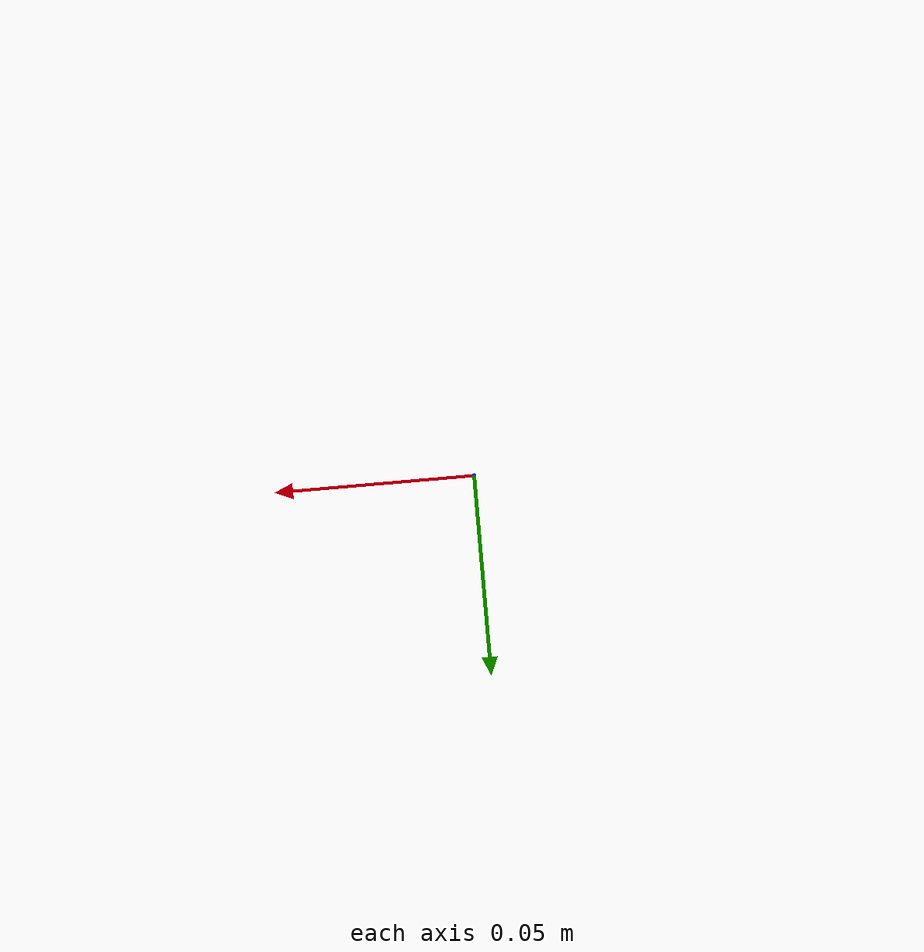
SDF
<?xml version="1.0" encoding="UTF-8"?>
<sdf version='1.9'>
  <model name='apriltag'>
    <static>true</static>
    <pose>0 0 0.001 0 0 0</pose>
    <link name='base'>
      <visual name='tag_001_visual'>
        <geometry>
          <plane>
            <normal>0 0 1</normal>
            <size>1 1</size>
          </plane>
        </geometry>
        <material>
          <diffuse>1 1 1 1</diffuse>
          <specular>0.4 0.4 0.4 1</specular>
          <pbr>
            <metal>
              <albedo_map>model://apriltag/tag48_12_002.png</albedo_map>
            </metal>
          </pbr>
        </material>
      </visual>
      <visual name='tag_002_visual'>
        <geometry>
          <plane>
            <normal>0 0 1</normal>
            <size>0.2 0.2</size>
          </plane>
        </geometry>
        <material>
          <diffuse>1 1 1 1</diffuse>
          <specular>0.4 0.4 0.4 1</specular>
          <pbr>
            <metal>
              <albedo_map>model://apriltag/tag36h11_001.png</albedo_map>
            </metal>
          </pbr>
        </material>
      </visual>
    </link>
  </model>
</sdf>
